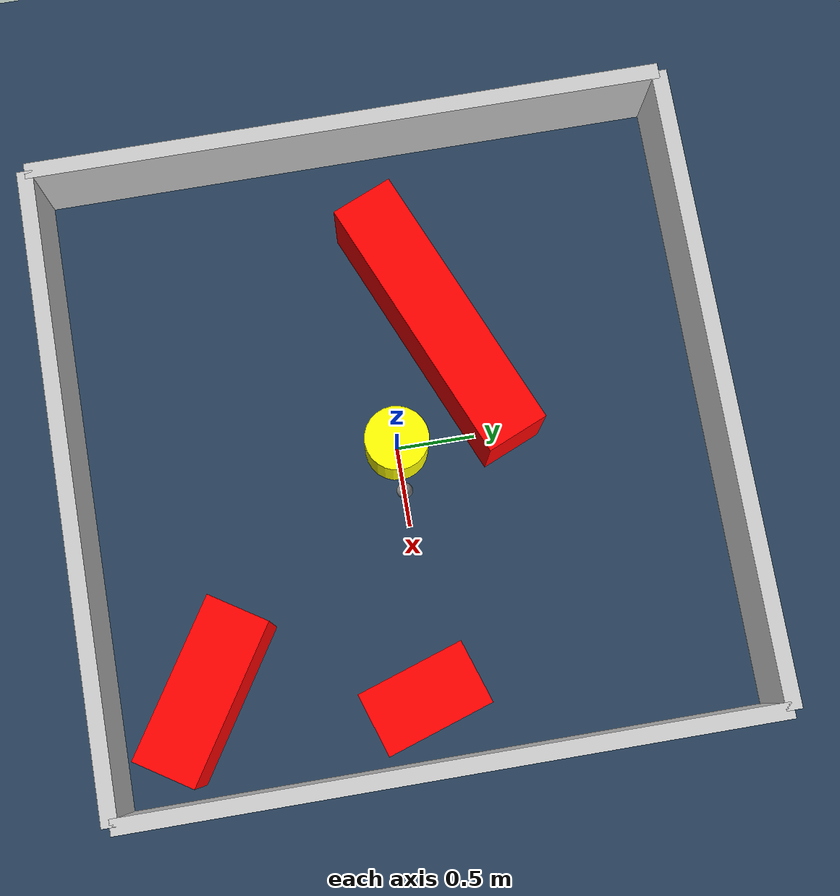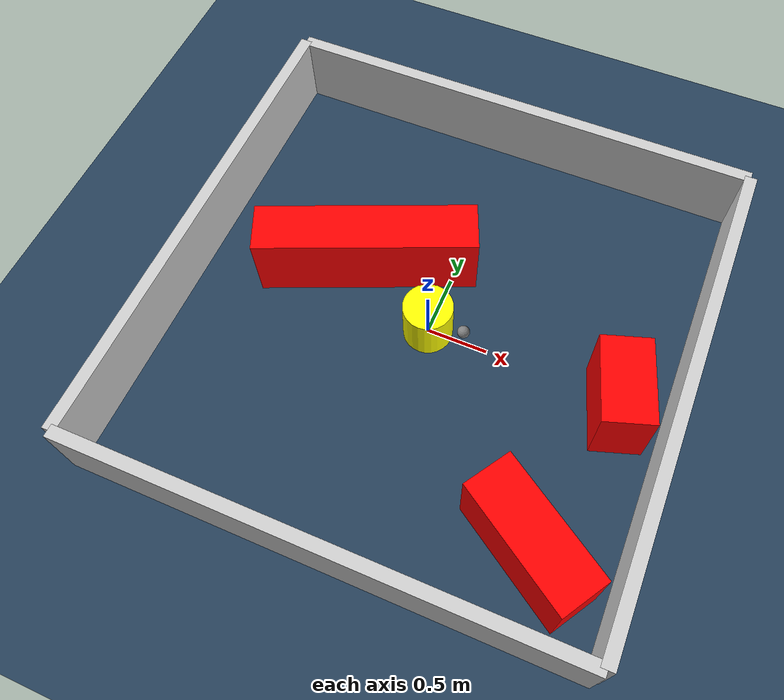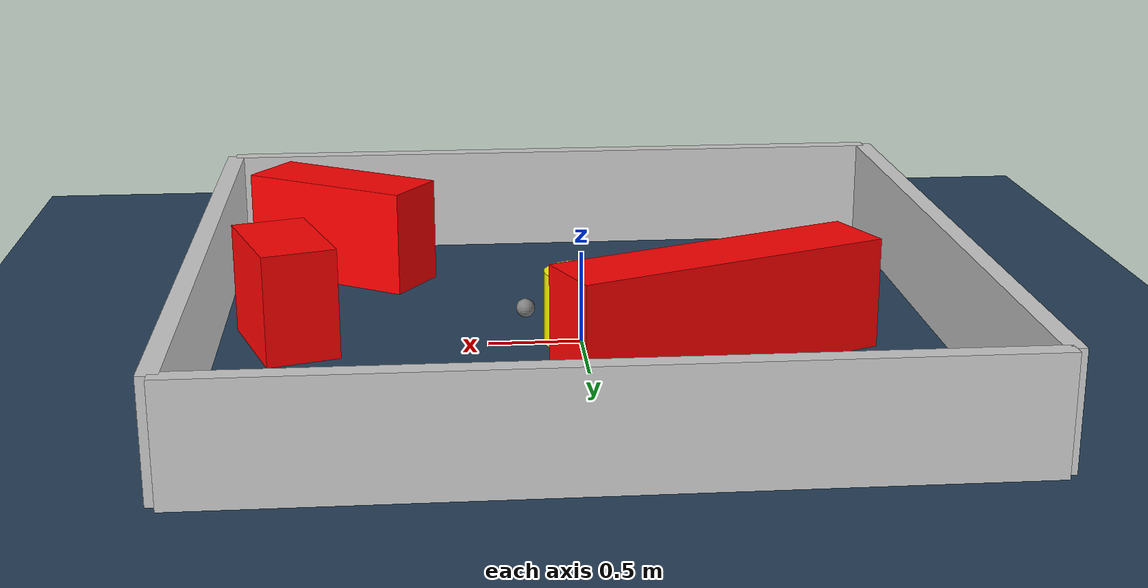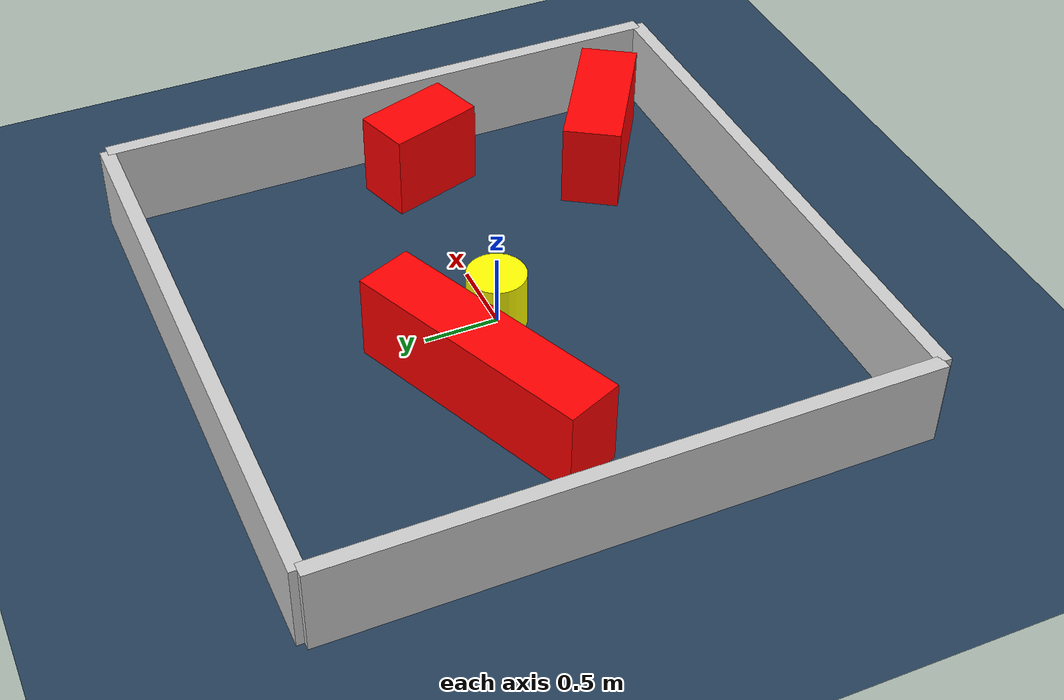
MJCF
<?xml version="1.0" ?>
<mujoco model="generated_environment">
  <option timestep="0.01" integrator="RK4" cone="elliptic"/>
  <default>
    <geom density="1"/>
  </default>
  <asset>
    <texture builtin="gradient" height="3072" rgb1="0.3 0.5 0.7" rgb2="0 0 0" type="skybox" width="512"/>
    <texture builtin="checker" height="300" mark="edge" markrgb="0.8 0.8 0.8" name="groundplane" rgb1="0.2 0.3 0.4" rgb2="0.1 0.2 0.3" type="2d" width="300"/>
    <material name="groundplane" reflectance="0.2" texrepeat="5 5" texture="groundplane" texuniform="true"/>
    <material name="robot" rgba="0.0 1.0 0.0 1"/>
  </asset>
  <worldbody>
    <light dir="0 0 -1" directional="true" pos="0 0 1.5"/>
    <geom condim="4" friction="1.0 0.005 0.001" material="groundplane" name="floor" size="0 0 0.05" type="plane"/>
    <body name="walls">
      <geom name="wall_1" condim="4" pos="-2.0 0.0 0.3" rgba="0.800000011920929 0.800000011920929 0.800000011920929 1.0" size="0.05 2.0 0.3" type="box"/>
      <geom name="wall_2" condim="4" pos="2.0 0.0 0.3" rgba="0.800000011920929 0.800000011920929 0.800000011920929 1.0" size="0.05 2.0 0.3" type="box"/>
      <geom name="wall_3" condim="4" pos="0.0 -2.0 0.3" rgba="0.800000011920929 0.800000011920929 0.800000011920929 1.0" size="2.0 0.05 0.3" type="box"/>
      <geom name="wall_4" condim="4" pos="0.0 2.0 0.3" rgba="0.800000011920929 0.800000011920929 0.800000011920929 1.0" size="2.0 0.05 0.3" type="box"/>
    </body>
    <body name="robot">
      <joint name="joint_x" type="slide" pos="0 0 0" axis="1 0 0"/>
      <joint name="joint_y" type="slide" pos="0 0 0" axis="0 1 0"/>
      <geom name="robot" type="sphere" pos="0.3 0.0 0.2" size="0.05" mass="5." friction="1.0 0.005 0.0001" condim="4" rgba="0.5 0.5 0.5 1.0"/>
      <site name="sensor_ball"/>
    </body>
    <body name="obstacle_movable_1">
      <geom name="obstacle_movable_1" condim="4" pos="0.0 0.0 0.2" euler="0 0 0.0" friction="1.0 0.005 0.001" rgba="1.0 1.0 0.0 1.0" size="0.2 0.2 0.0" type="cylinder" mass="0.1"/>
      <joint type="free"/>
    </body>
    <body name="obstacle_2_static">
      <geom name="obstacle_2_static" condim="4" pos="-0.6842533683995033 0.37352221491219173 0.3" euler="0 0 22.836153061888368" friction="1.0 0.005 0.001" rgba="1 0 0 1" size="0.8840386390896198 0.2 0.3" type="box"/>
    </body>
    <body name="obstacle_3_static">
      <geom name="obstacle_3_static" condim="4" pos="1.320196865595307 -1.3754202178339425 0.3" euler="0 0 327.26575308763256" friction="1.0 0.005 0.001" rgba="1 0 0 1" size="0.5239578361608508 0.2 0.3" type="box"/>
    </body>
    <body name="obstacle_4_static">
      <geom name="obstacle_4_static" condim="4" pos="1.5801474726889944 -0.09737551096990638 0.3" euler="0 0 287.9838108377905" friction="1.0 0.005 0.001" rgba="1 0 0 1" size="0.3388345989203594 0.2 0.3" type="box"/>
    </body>
  </worldbody>
  <actuator>
    <motor name="actuator_x" joint="joint_x" gear="1" ctrlrange="-1 1"/>
    <motor name="actuator_y" joint="joint_y" gear="1" ctrlrange="-1 1"/>
  </actuator>
</mujoco>
